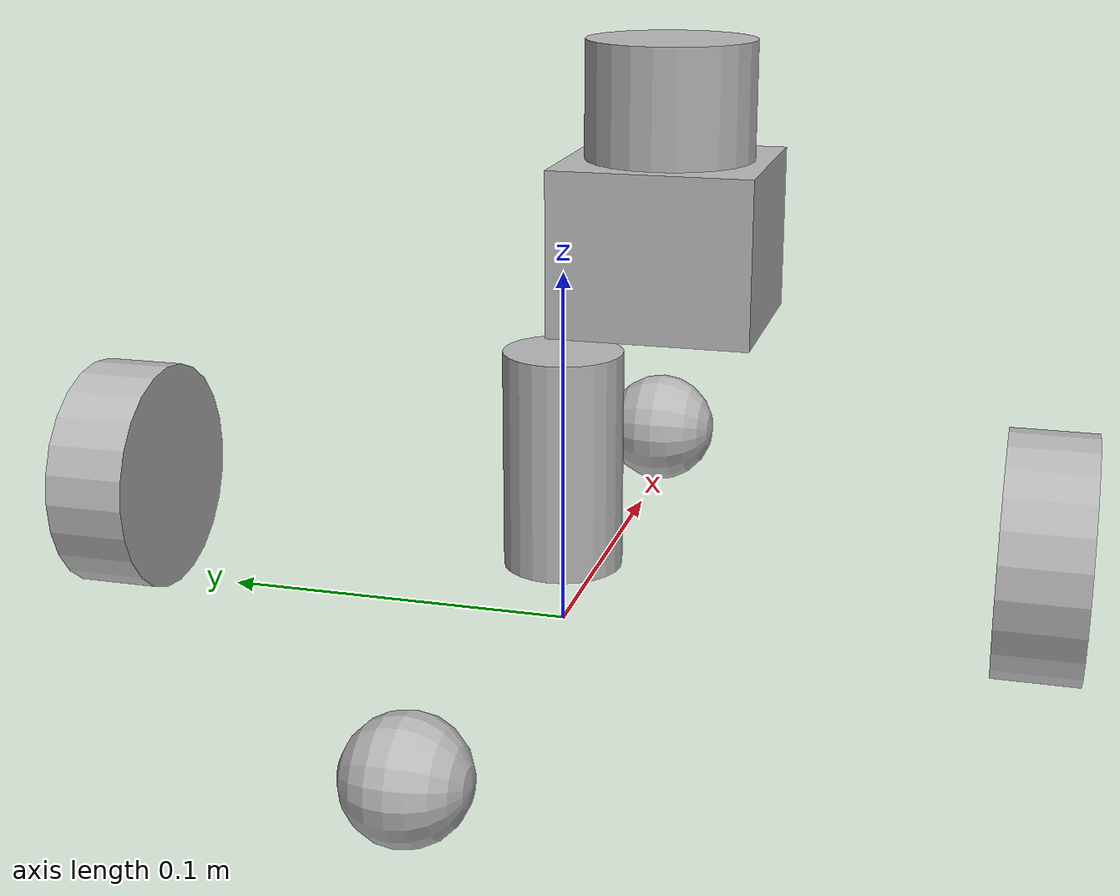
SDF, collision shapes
<?xml version='1.0'?>
<sdf version='1.6'>
  <model name='sonny'>
    <link name='base_link'>
      <inertial>
        <pose frame=''>0.001453 -0.000453 0.029787 0 -0 0</pose>
        <inertia>
          <ixx>0.05864</ixx>
          <ixy>0.000124</ixy>
          <ixz>0.000615</ixz>
          <iyy>0.058786</iyy>
          <iyz>1.4e-05</iyz>
          <izz>1.53244</izz>
        </inertia>
        <mass>2.234</mass>
      </inertial>
      <sensor name='left_cliff_sensor' type='ray'>
        <pose frame=''>0.07 0.14 0.027 0 1.57079 0</pose>
        <ray>
          <scan>
            <horizontal>
              <samples>1</samples>
              <resolution>1</resolution>
              <min_angle>0</min_angle>
              <max_angle>0</max_angle>
            </horizontal>
            <vertical>
              <samples>1</samples>
              <min_angle>0</min_angle>
              <max_angle>0</max_angle>
            </vertical>
          </scan>
          <range>
            <min>0.01</min>
            <max>0.04</max>
            <resolution>0.1</resolution>
          </range>
        </ray>
      </sensor>
      <sensor name='leftfront_cliff_sensor' type='ray'>
        <pose frame=''>0.15 0.04 0.027 0 1.57079 0</pose>
        <ray>
          <scan>
            <horizontal>
              <samples>1</samples>
              <resolution>1</resolution>
              <min_angle>0</min_angle>
              <max_angle>0</max_angle>
            </horizontal>
            <vertical>
              <samples>1</samples>
              <min_angle>0</min_angle>
              <max_angle>0</max_angle>
            </vertical>
          </scan>
          <range>
            <min>0.01</min>
            <max>0.04</max>
            <resolution>0.1</resolution>
          </range>
        </ray>
      </sensor>
      <sensor name='right_cliff_sensor' type='ray'>
        <pose frame=''>0.07 -0.14 0.027 0 1.57079 0</pose>
        <ray>
          <scan>
            <horizontal>
              <samples>1</samples>
              <resolution>1</resolution>
              <min_angle>0</min_angle>
              <max_angle>0</max_angle>
            </horizontal>
            <vertical>
              <samples>1</samples>
              <min_angle>0</min_angle>
              <max_angle>0</max_angle>
            </vertical>
          </scan>
          <range>
            <min>0.01</min>
            <max>0.04</max>
            <resolution>0.1</resolution>
          </range>
        </ray>
      </sensor>
      <sensor name='rightfront_cliff_sensor' type='ray'>
        <pose frame=''>0.15 -0.04 0.027 0 1.57079 0</pose>
        <ray>
          <scan>
            <horizontal>
              <samples>1</samples>
              <resolution>1</resolution>
              <min_angle>0</min_angle>
              <max_angle>0</max_angle>
            </horizontal>
            <vertical>
              <samples>1</samples>
              <min_angle>0</min_angle>
              <max_angle>0</max_angle>
            </vertical>
          </scan>
          <range>
            <min>0.01</min>
            <max>0.04</max>
            <resolution>0.1</resolution>
          </range>
        </ray>
      </sensor>
      <sensor name='wall_sensor' type='ray'>
        <pose frame=''>0.09 -0.12 0.059 0 0 -1</pose>
        <ray>
          <scan>
            <horizontal>
              <samples>1</samples>
              <resolution>1</resolution>
              <min_angle>0</min_angle>
              <max_angle>0</max_angle>
            </horizontal>
            <vertical>
              <samples>1</samples>
              <min_angle>0</min_angle>
              <max_angle>0</max_angle>
            </vertical>
          </scan>
          <range>
            <min>0.016</min>
            <max>0.04</max>
            <resolution>0.1</resolution>
          </range>
        </ray>
      </sensor>
      <pose frame=''>0 -0 0 0 -0 0</pose>
      <self_collide>0</self_collide>
      <enable_wind>0</enable_wind>
      <kinematic>0</kinematic>
      <visual name='base_visual'>
        <pose frame=''>0 0 0.0478 0 -0 0</pose>
        <geometry>
          <mesh>
            <uri>model://create/meshes/create_body.dae</uri>
          </mesh>
        </geometry>
        <transparency>0</transparency>
        <cast_shadows>1</cast_shadows>
        <material>
          <emissive>0 0 0 1</emissive>
        </material>
      </visual>
      <visual name='rear_wheel_visual'>
        <pose frame=''>-0.13 0 0.017 -0.000572 1.5707 1.57013</pose>
        <geometry>
          <sphere>
            <radius>0.0075</radius>
          </sphere>
        </geometry>
        <transparency>0</transparency>
        <cast_shadows>1</cast_shadows>
        <material>
          <emissive>0 0 0 1</emissive>
        </material>
      </visual>
      <visual name='front_wheel_visual'>
        <pose frame=''>0.13 0 0.017 -0.000572 1.5707 1.57013</pose>
        <geometry>
          <sphere>
            <radius>0.009</radius>
          </sphere>
        </geometry>
        <transparency>0</transparency>
        <cast_shadows>1</cast_shadows>
        <material>
          <emissive>0 0 0 1</emissive>
        </material>
      </visual>
      <collision name='base_collision'>
        <laser_retro>0</laser_retro>
        <max_contacts>10</max_contacts>
        <pose frame=''>0 0 0.0478 0 -0 0</pose>
        <geometry>
          <cylinder>
            <radius>0.016495</radius>
            <length>0.061163</length>
          </cylinder>
        </geometry>
        <surface>
          <friction>
            <ode>
              <mu>1</mu>
              <mu2>1</mu2>
              <fdir1>0 0 0</fdir1>
              <slip1>0</slip1>
              <slip2>0</slip2>
            </ode>
            <torsional>
              <coefficient>1</coefficient>
              <patch_radius>0</patch_radius>
              <surface_radius>0</surface_radius>
              <use_patch_radius>1</use_patch_radius>
              <ode>
                <slip>0</slip>
              </ode>
            </torsional>
          </friction>
          <bounce>
            <restitution_coefficient>0</restitution_coefficient>
            <threshold>1e+06</threshold>
          </bounce>
          <contact>
            <collide_without_contact>0</collide_without_contact>
            <collide_without_contact_bitmask>1</collide_without_contact_bitmask>
            <collide_bitmask>1</collide_bitmask>
            <ode>
              <soft_cfm>0</soft_cfm>
              <soft_erp>0.2</soft_erp>
              <kp>1e+13</kp>
              <kd>1</kd>
              <max_vel>0.01</max_vel>
              <min_depth>0</min_depth>
            </ode>
            <bullet>
              <split_impulse>1</split_impulse>
              <split_impulse_penetration_threshold>-0.01</split_impulse_penetration_threshold>
              <soft_cfm>0</soft_cfm>
              <soft_erp>0.2</soft_erp>
              <kp>1e+13</kp>
              <kd>1</kd>
            </bullet>
          </contact>
        </surface>
      </collision>
      <collision name='front_wheel_collision'>
        <laser_retro>0</laser_retro>
        <max_contacts>10</max_contacts>
        <pose frame=''>0.13 0 0.017 -0 1.5707 1.5707</pose>
        <geometry>
          <sphere>
            <radius>0.018</radius>
          </sphere>
        </geometry>
        <surface>
          <friction>
            <ode>
              <mu>0</mu>
              <mu2>0</mu2>
              <fdir1>0 0 0</fdir1>
              <slip1>0</slip1>
              <slip2>0</slip2>
            </ode>
            <torsional>
              <coefficient>1</coefficient>
              <patch_radius>0</patch_radius>
              <surface_radius>0</surface_radius>
              <use_patch_radius>1</use_patch_radius>
              <ode>
                <slip>0</slip>
              </ode>
            </torsional>
          </friction>
          <bounce>
            <restitution_coefficient>0</restitution_coefficient>
            <threshold>1e+06</threshold>
          </bounce>
          <contact>
            <collide_without_contact>0</collide_without_contact>
            <collide_without_contact_bitmask>1</collide_without_contact_bitmask>
            <collide_bitmask>1</collide_bitmask>
            <ode>
              <soft_cfm>0</soft_cfm>
              <soft_erp>0.2</soft_erp>
              <kp>1e+13</kp>
              <kd>1</kd>
              <max_vel>0.01</max_vel>
              <min_depth>0</min_depth>
            </ode>
            <bullet>
              <split_impulse>1</split_impulse>
              <split_impulse_penetration_threshold>-0.01</split_impulse_penetration_threshold>
              <soft_cfm>0</soft_cfm>
              <soft_erp>0.2</soft_erp>
              <kp>1e+13</kp>
              <kd>1</kd>
            </bullet>
          </contact>
        </surface>
      </collision>
      <collision name='rear_wheel_collision'>
        <laser_retro>0</laser_retro>
        <max_contacts>10</max_contacts>
        <pose frame=''>-0.13 0 0.017 -0 1.5707 1.5707</pose>
        <geometry>
          <sphere>
            <radius>0.015</radius>
          </sphere>
        </geometry>
        <surface>
          <friction>
            <ode>
              <mu>0</mu>
              <mu2>0</mu2>
              <fdir1>0 0 0</fdir1>
              <slip1>0</slip1>
              <slip2>0</slip2>
            </ode>
            <torsional>
              <coefficient>1</coefficient>
              <patch_radius>0</patch_radius>
              <surface_radius>0</surface_radius>
              <use_patch_radius>1</use_patch_radius>
              <ode>
                <slip>0</slip>
              </ode>
            </torsional>
          </friction>
          <bounce>
            <restitution_coefficient>0</restitution_coefficient>
            <threshold>1e+06</threshold>
          </bounce>
          <contact>
            <collide_without_contact>0</collide_without_contact>
            <collide_without_contact_bitmask>1</collide_without_contact_bitmask>
            <collide_bitmask>1</collide_bitmask>
            <ode>
              <soft_cfm>0</soft_cfm>
              <soft_erp>0.2</soft_erp>
              <kp>1e+13</kp>
              <kd>1</kd>
              <max_vel>0.01</max_vel>
              <min_depth>0</min_depth>
            </ode>
            <bullet>
              <split_impulse>1</split_impulse>
              <split_impulse_penetration_threshold>-0.01</split_impulse_penetration_threshold>
              <soft_cfm>0</soft_cfm>
              <soft_erp>0.2</soft_erp>
              <kp>1e+13</kp>
              <kd>1</kd>
            </bullet>
          </contact>
        </surface>
      </collision>
    </link>
    <link name='left_wheel'>
      <pose frame=''>-0 0.13 0.032 0 -0 0</pose>
      <inertial>
        <inertia>
          <ixx>0.001</ixx>
          <ixy>0</ixy>
          <ixz>0</ixz>
          <iyy>0.001</iyy>
          <iyz>0</iyz>
          <izz>0.001</izz>
        </inertia>
        <mass>0.01</mass>
      </inertial>
      <self_collide>0</self_collide>
      <enable_wind>0</enable_wind>
      <kinematic>0</kinematic>
      <visual name='visual'>
        <pose frame=''>0 0 0 -0.000572 1.5707 1.57013</pose>
        <geometry>
          <cylinder>
            <radius>0.033</radius>
            <length>0.023</length>
          </cylinder>
        </geometry>
        <transparency>0</transparency>
        <cast_shadows>1</cast_shadows>
      </visual>
      <collision name='collision'>
        <laser_retro>0</laser_retro>
        <max_contacts>10</max_contacts>
        <pose frame=''>0 0 0 -0 1.5707 1.5707</pose>
        <geometry>
          <cylinder>
            <radius>0.033</radius>
            <length>0.023</length>
          </cylinder>
        </geometry>
        <surface>
          <friction>
            <ode>
              <mu>10</mu>
              <mu2>10</mu2>
              <fdir1>0 0 0</fdir1>
              <slip1>0</slip1>
              <slip2>0</slip2>
            </ode>
            <torsional>
              <coefficient>1</coefficient>
              <patch_radius>0</patch_radius>
              <surface_radius>0</surface_radius>
              <use_patch_radius>1</use_patch_radius>
              <ode>
                <slip>0</slip>
              </ode>
            </torsional>
          </friction>
          <bounce>
            <restitution_coefficient>0</restitution_coefficient>
            <threshold>1e+06</threshold>
          </bounce>
          <contact>
            <collide_without_contact>0</collide_without_contact>
            <collide_without_contact_bitmask>1</collide_without_contact_bitmask>
            <collide_bitmask>1</collide_bitmask>
            <ode>
              <soft_cfm>0</soft_cfm>
              <soft_erp>0.2</soft_erp>
              <kp>1e+13</kp>
              <kd>1</kd>
              <max_vel>0.01</max_vel>
              <min_depth>0</min_depth>
            </ode>
            <bullet>
              <split_impulse>1</split_impulse>
              <split_impulse_penetration_threshold>-0.01</split_impulse_penetration_threshold>
              <soft_cfm>0</soft_cfm>
              <soft_erp>0.2</soft_erp>
              <kp>1e+13</kp>
              <kd>1</kd>
            </bullet>
          </contact>
        </surface>
      </collision>
    </link>
    <link name='right_wheel'>
      <pose frame=''>0 -0.13 0.032 0 -0 0</pose>
      <inertial>
        <inertia>
          <ixx>0.001</ixx>
          <ixy>0</ixy>
          <ixz>0</ixz>
          <iyy>0.001</iyy>
          <iyz>0</iyz>
          <izz>0.001</izz>
        </inertia>
        <mass>0.01</mass>
      </inertial>
      <self_collide>0</self_collide>
      <enable_wind>0</enable_wind>
      <kinematic>0</kinematic>
      <visual name='visual'>
        <pose frame=''>0 0 0 -0.000572 1.5707 1.57013</pose>
        <geometry>
          <cylinder>
            <radius>0.033</radius>
            <length>0.023</length>
          </cylinder>
        </geometry>
        <transparency>0</transparency>
        <cast_shadows>1</cast_shadows>
      </visual>
      <collision name='collision'>
        <laser_retro>0</laser_retro>
        <max_contacts>10</max_contacts>
        <pose frame=''>0 0 0 -0 1.5707 1.5707</pose>
        <geometry>
          <cylinder>
            <radius>0.033</radius>
            <length>0.023</length>
          </cylinder>
        </geometry>
        <surface>
          <friction>
            <ode>
              <mu>10</mu>
              <mu2>10</mu2>
              <fdir1>0 0 0</fdir1>
              <slip1>0</slip1>
              <slip2>0</slip2>
            </ode>
            <torsional>
              <coefficient>1</coefficient>
              <patch_radius>0</patch_radius>
              <surface_radius>0</surface_radius>
              <use_patch_radius>1</use_patch_radius>
              <ode>
                <slip>0</slip>
              </ode>
            </torsional>
          </friction>
          <bounce>
            <restitution_coefficient>0</restitution_coefficient>
            <threshold>1e+06</threshold>
          </bounce>
          <contact>
            <collide_without_contact>0</collide_without_contact>
            <collide_without_contact_bitmask>1</collide_without_contact_bitmask>
            <collide_bitmask>1</collide_bitmask>
            <ode>
              <soft_cfm>0</soft_cfm>
              <soft_erp>0.2</soft_erp>
              <kp>1e+13</kp>
              <kd>1</kd>
              <max_vel>0.01</max_vel>
              <min_depth>0</min_depth>
            </ode>
            <bullet>
              <split_impulse>1</split_impulse>
              <split_impulse_penetration_threshold>-0.01</split_impulse_penetration_threshold>
              <soft_cfm>0</soft_cfm>
              <soft_erp>0.2</soft_erp>
              <kp>1e+13</kp>
              <kd>1</kd>
            </bullet>
          </contact>
        </surface>
      </collision>
    </link>
    <model name='hokuyo'>
      <pose frame=''>-0.023651 -0.033465 0.129836 0 -0 1e-06</pose>
      <link name='link'>
        <inertial>
          <mass>0.1</mass>
          <inertia>
            <ixx>1</ixx>
            <ixy>0</ixy>
            <ixz>0</ixz>
            <iyy>1</iyy>
            <iyz>0</iyz>
            <izz>1</izz>
          </inertia>
        </inertial>
        <visual name='visual'>
          <geometry>
            <mesh>
              <uri>model://hokuyo/meshes/hokuyo.dae</uri>
            </mesh>
          </geometry>
        </visual>
        <collision name='collision-base'>
          <pose frame=''>0 0 -0.0145 0 -0 0</pose>
          <geometry>
            <box>
              <size>0.05 0.05 0.041</size>
            </box>
          </geometry>
          <max_contacts>10</max_contacts>
          <surface>
            <contact>
              <ode/>
            </contact>
            <bounce/>
            <friction>
              <torsional>
                <ode/>
              </torsional>
              <ode/>
            </friction>
          </surface>
        </collision>
        <collision name='collision-top'>
          <pose frame=''>0 0 0.0205 0 -0 0</pose>
          <geometry>
            <cylinder>
              <radius>0.021</radius>
              <length>0.029</length>
            </cylinder>
          </geometry>
          <max_contacts>10</max_contacts>
          <surface>
            <contact>
              <ode/>
            </contact>
            <bounce/>
            <friction>
              <torsional>
                <ode/>
              </torsional>
              <ode/>
            </friction>
          </surface>
        </collision>
        <sensor name='laser' type='ray'>
          <pose frame=''>0.01 0 0.0175 0 -0 0</pose>
          <ray>
            <scan>
              <horizontal>
                <samples>640</samples>
                <resolution>1</resolution>
                <min_angle>-2.26889</min_angle>
                <max_angle>2.2689</max_angle>
              </horizontal>
             </scan>
            <range>
              <min>0.08</min>
              <max>10</max>
              <resolution>0.01</resolution>
            </range>
          </ray>
          <plugin name='laser' filename='libgazebo_ros_laser.so'>
            <topicName>/scan</topicName>
            <frameName>base_link</frameName>
            <robotBaseFrame>base_link</robotBaseFrame>
          </plugin>
          <always_on>1</always_on>
          <update_rate>30</update_rate>
          <visualize>0</visualize>
        </sensor>
        <self_collide>0</self_collide>
        <enable_wind>0</enable_wind>
        <kinematic>0</kinematic>
      </link>
    </model>
    <joint name='hokuyo_joint' type='fixed'>
      <parent>base_link</parent>
      <child>hokuyo::link</child>
      <pose frame=''>0 0 0 0 -0 0</pose>
      <physics>
        <ode>
          <limit>
            <cfm>0</cfm>
            <erp>0.2</erp>
          </limit>
          <suspension>
            <cfm>0</cfm>
            <erp>0.2</erp>
          </suspension>
        </ode>
      </physics>
    </joint>
    <joint name='left_wheel' type='revolute'>
      <parent>base_link</parent>
      <child>left_wheel</child>
      <pose frame=''>0 0 0 0 -0 0</pose>
      <axis>
        <xyz>0 1 0</xyz>
        <use_parent_model_frame>1</use_parent_model_frame>
        <limit>
          <lower>-1e+16</lower>
          <upper>1e+16</upper>
          <effort>-1</effort>
          <velocity>-1</velocity>
        </limit>
        <dynamics>
          <spring_reference>0</spring_reference>
          <spring_stiffness>0</spring_stiffness>
          <damping>0</damping>
          <friction>0</friction>
        </dynamics>
      </axis>
      <physics>
        <ode>
          <limit>
            <cfm>0</cfm>
            <erp>0.2</erp>
          </limit>
          <suspension>
            <cfm>0</cfm>
            <erp>0.2</erp>
          </suspension>
        </ode>
      </physics>
    </joint>
    <joint name='right_wheel' type='revolute'>
      <parent>base_link</parent>
      <child>right_wheel</child>
      <pose frame=''>0 0 0 0 -0 0</pose>
      <axis>
        <xyz>0 1 0</xyz>
        <use_parent_model_frame>1</use_parent_model_frame>
        <limit>
          <lower>-1e+16</lower>
          <upper>1e+16</upper>
          <effort>-1</effort>
          <velocity>-1</velocity>
        </limit>
        <dynamics>
          <spring_reference>0</spring_reference>
          <spring_stiffness>0</spring_stiffness>
          <damping>0</damping>
          <friction>0</friction>
        </dynamics>
      </axis>
      <physics>
        <ode>
          <limit>
            <cfm>0</cfm>
            <erp>0.2</erp>
          </limit>
          <suspension>
            <cfm>0</cfm>
            <erp>0.2</erp>
          </suspension>
        </ode>
      </physics>
    </joint>
    <static>0</static>
    <allow_auto_disable>1</allow_auto_disable>
    <plugin name='differential_drive_controller' filename='libgazebo_ros_diff_drive.so'>
      <alwaysOn>1</alwaysOn>
      <updateRate>100</updateRate>
      <leftJoint>right_wheel</leftJoint>
      <rightJoint>left_wheel</rightJoint>
      <wheelSeparation>0.5380</wheelSeparation>
      <wheelDiameter>0.2410</wheelDiameter>
      <torque>20</torque>
      <commandTopic>/cmd_vel</commandTopic>
      <odometryTopic>odom</odometryTopic>
      <odometryFrame>odom</odometryFrame>
      <robotBaseFrame>base_link</robotBaseFrame>
      <publishWheelTF>1</publishWheelTF>
      <publishWheelJointState>1</publishWheelJointState>
    </plugin>
  </model>
</sdf>
